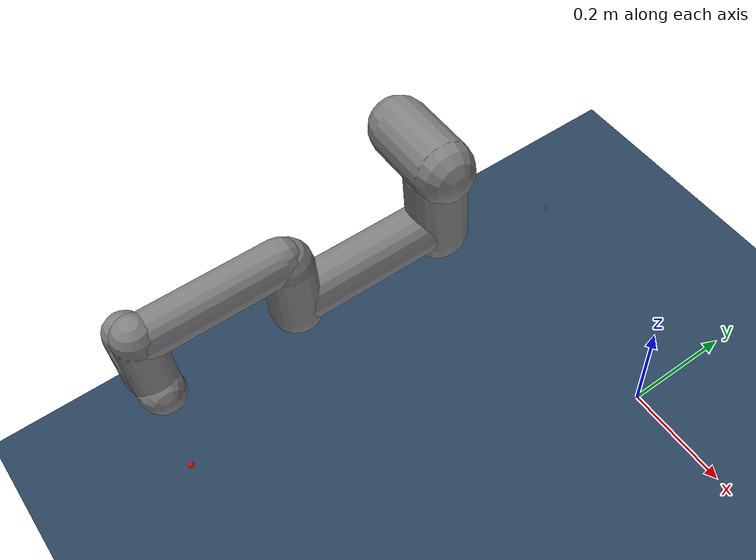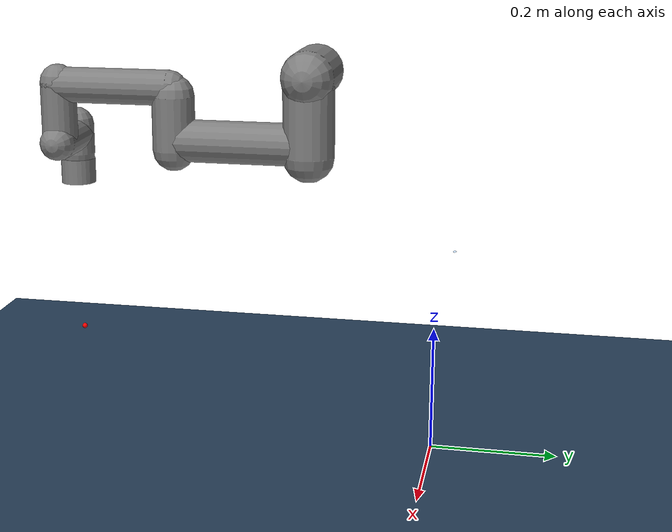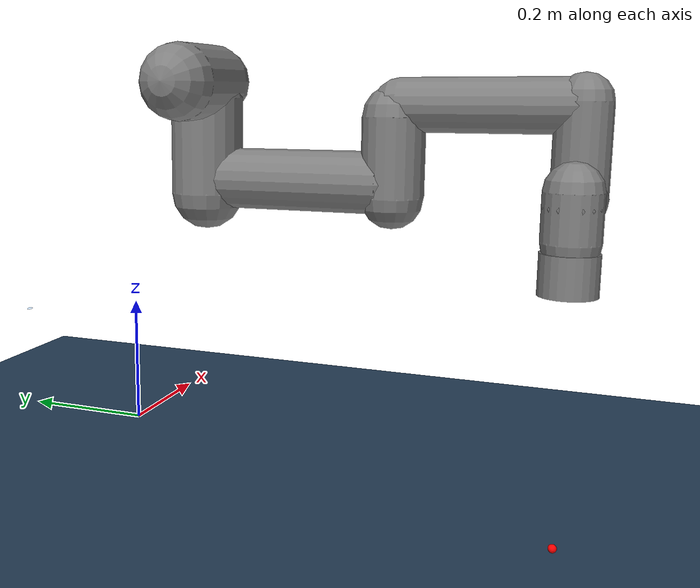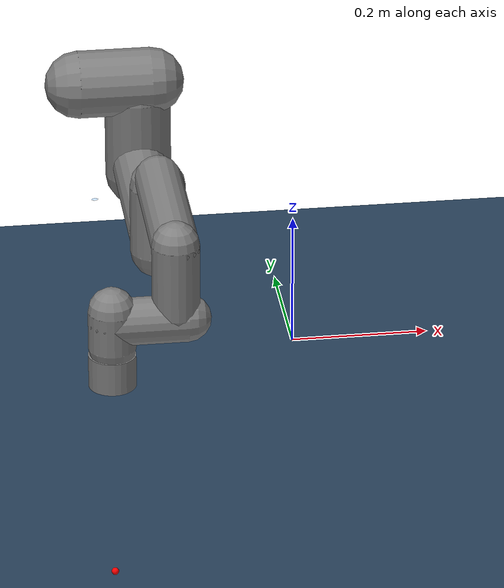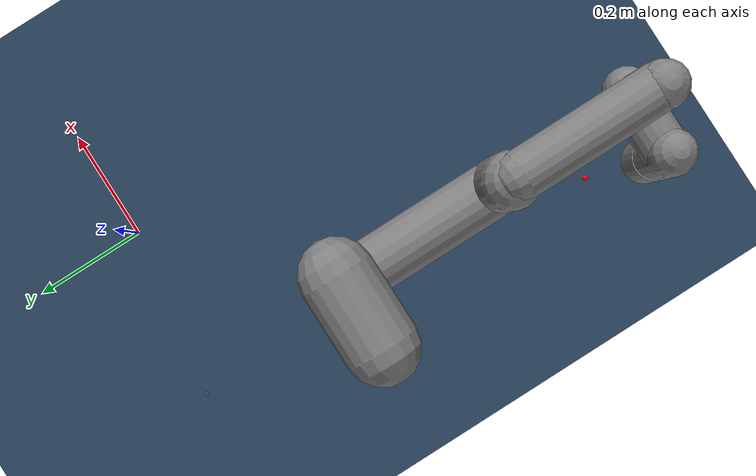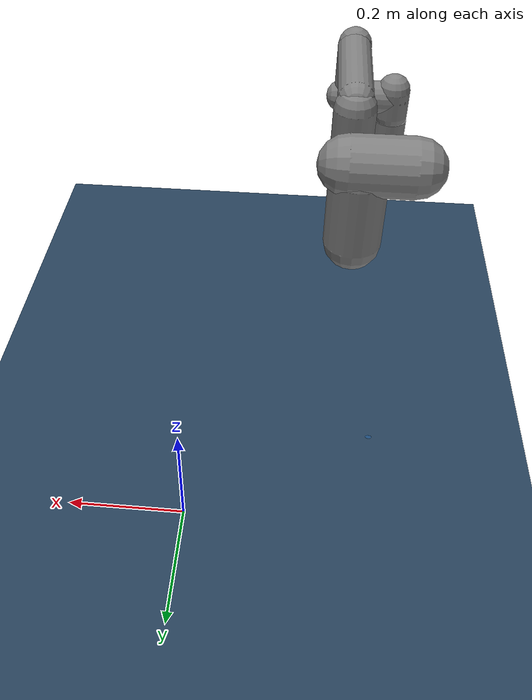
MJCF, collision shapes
<mujoco model="ur3e scene">
  <include file="ur3e_base.xml"/>

  <statistic center="0.3 0 0.4" extent="0.8"/>

  <visual>
    <headlight diffuse="0.6 0.6 0.6" ambient="0.1 0.1 0.1" specular="0 0 0"/>
    <rgba haze="0.15 0.25 0.35 1"/>
    <global azimuth="120" elevation="-20"/>
  </visual>

  <asset>
    <texture type="skybox" builtin="gradient" rgb1="0.3 0.5 0.7" rgb2="0 0 0" width="512" height="3072"/>
    <texture type="2d" name="groundplane" builtin="checker" mark="edge" rgb1="0.2 0.3 0.4" rgb2="0.1 0.2 0.3"
      markrgb="0.8 0.8 0.8" width="300" height="300"/>
    <material name="groundplane" texture="groundplane" texuniform="true" texrepeat="5 5" reflectance="0.2"/>
  </asset>

  <worldbody>
    <light pos="0 0 1.5" dir="0 0 -1" directional="true"/>
    <geom name="floor" size="0 0 0.05" type="plane" material="groundplane"/>
  </worldbody>
</mujoco>

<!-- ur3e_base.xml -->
<mujoco model="ur3e">
  <compiler angle="radian" meshdir="assets" autolimits="true"/>

  <option integrator="RK4"/>

  <default>
    <default class="ur3e">
      <material specular="0.5" shininess="0.25"/>
      <joint axis="0 1 0" range="-6.28319 6.28319" armature="0.1"/>
      <general gaintype="fixed" biastype="affine" ctrlrange="-6.2831 6.2831"/>
      <default class="size2">
        <general  gainprm="1000" biasprm="0 -1000 -200" forcerange="-56 56"/>
      </default>
      <default class="size1">
        <default class="size1_limited">
          <joint range="-3.14159 3.14159"/>
          <general gainprm="500" biasprm="0 -500 -100" ctrlrange="-3.14159 3.14159" forcerange="-28 28"/>
        </default>
      </default>
      <default class="size0">
        <general gainprm="200" biasprm="0 -200 -40" forcerange="-12 12"/>
      </default>
      <default class="visual">
        <geom type="mesh" contype="0" conaffinity="0" group="2"/>
      </default>
      <default class="collision">
        <geom type="capsule" group="3"/>
        <default class="eef_collision">
          <geom type="cylinder"/>
        </default>
      </default>
      <site size="0.001" rgba="0.5 0.5 0.5 0.3" group="4"/>
    </default>
  </default>

  <asset>
    <material class="ur3e" name="black" rgba="0.033 0.033 0.033 1"/>
    <material class="ur3e" name="jointgray" rgba="0.278 0.278 0.278 1"/>
    <material class="ur3e" name="linkgray" rgba="0.82 0.82 0.82 1"/>
    <material class="ur3e" name="urblue" rgba="0.49 0.678 0.8 1"/>

    <mesh file="base_0.obj"/>
    <mesh file="base_1.obj"/>
    <mesh file="shoulder_0.obj"/>
    <mesh file="shoulder_1.obj"/>
    <mesh file="shoulder_2.obj"/>
    <mesh file="upperarm_0.obj"/>
    <mesh file="upperarm_1.obj"/>
    <mesh file="upperarm_2.obj"/>
    <mesh file="upperarm_3.obj"/>
    <mesh file="forearm_0.obj"/>
    <mesh file="forearm_1.obj"/>
    <mesh file="forearm_2.obj"/>
    <mesh file="forearm_3.obj"/>
    <mesh file="wrist1_0.obj"/>
    <mesh file="wrist1_1.obj"/>
    <mesh file="wrist1_2.obj"/>
    <mesh file="wrist2_0.obj"/>
    <mesh file="wrist2_1.obj"/>
    <mesh file="wrist2_2.obj"/>
    <mesh file="wrist3.obj"/>
  </asset>

  <worldbody>
    <light name="spotlight" mode="targetbodycom" target="wrist_3_link" pos="0 -1 2"/>
    <body name="base" childclass="ur3e" pos="-0.405 -0.25 0.555" euler="0 1.5708 1.5708">
      <inertial mass="2" pos="0 0 0" diaginertia="0.0030532 0.0030532 0.005625"/>
      <geom mesh="base_0" material="jointgray" class="visual"/>
      <geom mesh="base_1" material="black" class="visual"/>
      <body name="shoulder_link" pos="0 0 0.15185" euler="0 0 3.14159">
        <inertial mass="1.98" pos="0 0 0" diaginertia="0.00809316 0.00809316 0.005625"/>
        <joint name="shoulder_pan_joint" class="size2" axis="0 0 1"/>
        <geom mesh="shoulder_0" material="urblue" class="visual"/>
        <geom mesh="shoulder_1" material="black" class="visual"/>
        <geom mesh="shoulder_2" material="jointgray" class="visual"/>
        <geom class="collision" size="0.047 0.05" pos="0 0 -0.032"/>
        <body name="upper_arm_link" pos="0 0.12 0" euler = "0 1.5708 0">
          <inertial mass="3.4445" pos="0 0 0.122" diaginertia="0.0217285 0.0217285 0.00961875"/>
          <joint name="shoulder_lift_joint" class="size2"/>
          <geom mesh="upperarm_0" material="black" class="visual"/>
          <geom mesh="upperarm_1" material="urblue" class="visual"/>
          <geom mesh="upperarm_2" material="jointgray" class="visual"/>
          <geom mesh="upperarm_3" material="linkgray" class="visual"/>
          <geom class="collision" size="0.046 0.06" pos="0 -0.04 0" quat="1 1 0 0"/>
          <geom class="collision" size="0.038 0.11" pos="0 0 0.12"/>
          <body name="forearm_link" pos="0 -0.093 0.24355">
            <inertial mass="1.437" pos="0 0 0.10625" diaginertia="0.00654457 0.00654457 0.00354375"/>
            <joint name="elbow_joint" class="size1_limited"/>
            <geom mesh="forearm_0" material="urblue" class="visual"/>
            <geom mesh="forearm_1" material="linkgray" class="visual"/>
            <geom mesh="forearm_2" material="black" class="visual"/>
            <geom mesh="forearm_3" material="jointgray" class="visual"/>
            <geom class="collision" size="0.038 0.048" pos="0 0.062 0" quat="1 1 0 0"/>
            <geom class="collision" size="0.032 0.103" pos="0 0 0.11"/>
            <body name="wrist_1_link" pos="0.0005 0 0.2132" quat="1 0 1 0">
              <inertial mass="0.871" pos="0 0.104 0" diaginertia="0.00225 0.002085 0.002085"/>
              <joint name="wrist_1_joint" class="size0"/>
              <geom mesh="wrist1_0" material="jointgray" class="visual"/>
              <geom mesh="wrist1_1" material="urblue" class="visual"/>
              <geom mesh="wrist1_2" material="black" class="visual"/>
              <geom class="collision" size="0.032 0.05" pos="0 0.045 0" quat="1 1 0 0"/>
              <body name="wrist_2_link" pos="0 0.104 0">
                <inertial mass="0.805" pos="0 0 0.08535" diaginertia="0.00225 0.002085 0.002085"/>
                <joint name="wrist_2_joint" axis="0 0 1"/>
                <geom mesh="wrist2_0" material="jointgray" class="visual"/>
                <geom mesh="wrist2_1" material="black" class="visual"/>
                <geom mesh="wrist2_2" material="urblue" class="visual"/>
                <geom class="collision" size="0.032 0.05" pos="0 0 0.035"/>
                <geom class="collision" size="0.032 0.027" pos="0 0.01 0.085" quat="1 1 0 0"/>
                <body name="wrist_3_link" pos="0 0 0.08535">
                  <inertial mass="0.261" pos="0 0.0715 0" quat="1 0 0 1" diaginertia="0.0001792 0.000136267 0.000136267"/>
                  <joint name="wrist_3_joint"/>
                  <geom mesh="wrist3" material="linkgray" class="visual"/>
                  <geom class="eef_collision" size="0.032 0.023" pos="0 0.07 0" quat="1 1 0 0"/>
                  <body name="tool0" pos="0 0.0921 0" euler = "-1.5708 0 0" >
                    <!-- pos="-0.002268 0.0921515  -0.010977" -->
                    <geom name="site_visual" type="sphere" size="0.005"  pos="-0.00064 0.00001 0.28773" rgba="1 0 0 1"/>
                    <site name="attachment_site"/>
                    <site name="tcp_site" pos=" -0.00064 0.00001 0.28773"/>
                  </body>
                </body>
              </body>
            </body>
          </body>
        </body>
      </body>
    </body>

    <!--body name="box" pos="-.25 -0.3 .2" quat="0 0 0 -1"-->
      <!--joint name="rotate_x" pos="0 0 0" axis="1 0 0" range="-.25 .25" damping="20" /-->
      <!--joint name="rotate_y" pos="0 0 0" axis="0 1 0" range="-.25 .25" damping="20" /-->
      <!--geom name="box" type="box" size="0.1 0.1 0.1" rgba="1 0 0 0.2" contype="0" conaffinity="0" group="1"/-->
      <!--geom name="cube_geom" type="box" size="0.1 0.1 0.1" material="matcube"
                  contype="0" conaffinity="0" group="1"/-->
    <!--/body-->
    <body name="my_visual_ellipse" pos="-0.289997 0.006666 0.247185" quat="0 0 0 -1">
            <!-- size attributes define the semi-axes (X Y Z radius) -->
            <!-- contype/conaffinity 0 ensures other objects pass right through it -->
            <geom name="ellipse_geom" type="ellipsoid" size="0.005 0.003 0.001" rgba="0 0.5 1 0.2"
                  contype="0" conaffinity="0" group="1"/>
    </body>
  </worldbody>

  <actuator>
    <general class="size2" name="shoulder_pan" joint="shoulder_pan_joint"/>
    <general class="size2" name="shoulder_lift" joint="shoulder_lift_joint"/>
    <general class="size1_limited" name="elbow" joint="elbow_joint"/>
    <general class="size0" name="wrist_1" joint="wrist_1_joint"/>
    <general class="size0" name="wrist_2" joint="wrist_2_joint"/>
    <general class="size0" name="wrist_3" joint="wrist_3_joint"/>
  </actuator>

  <keyframe>
    <key name="home" qpos="0 -0.5 -2.0 1.2 -3.2 -0.75" ctrl="0 -0.5 -2.0 1.2 -3.2 -0.75"/>
  </keyframe>
</mujoco>
